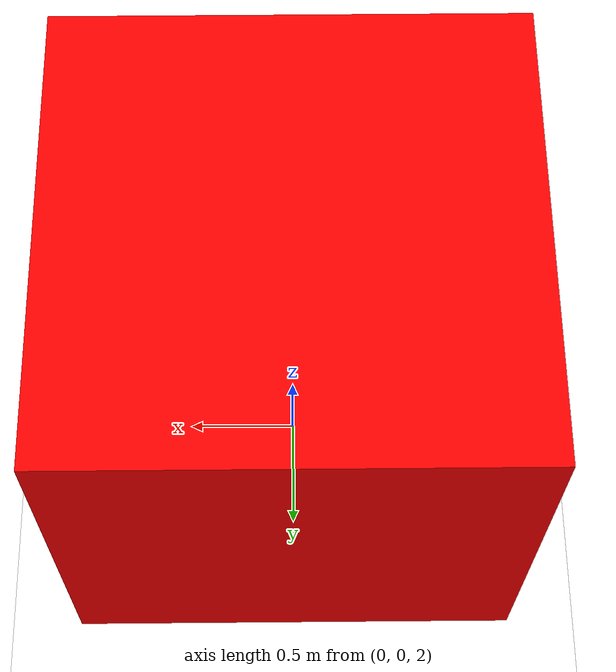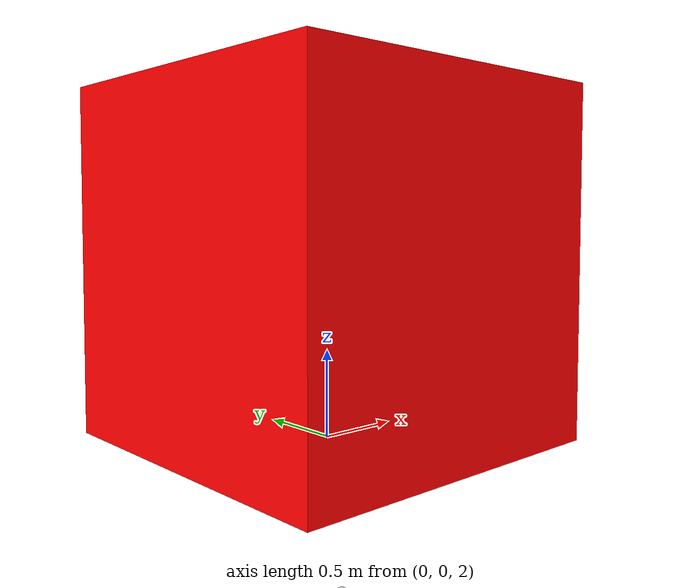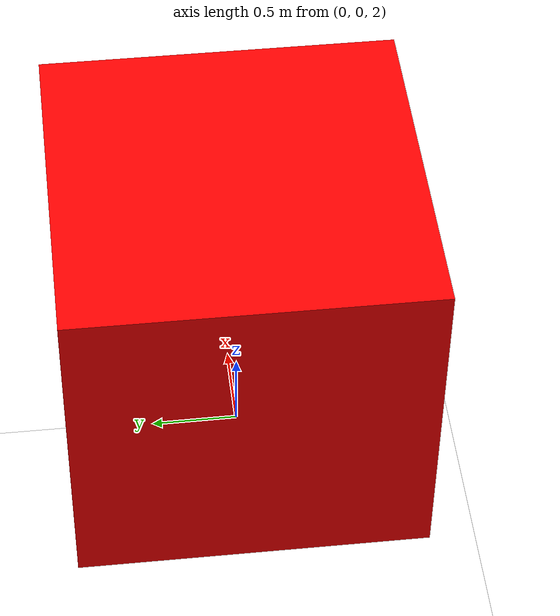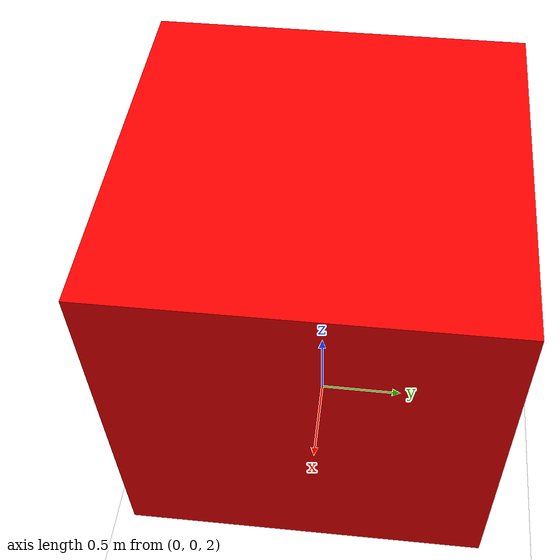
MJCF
<mujoco>
	<worldbody>
		<light diffuse=".5 .5 .5" pos="0 0 5" directional="true" dir="0 0 -1" />
		<geom name="floor" type="plane" size="10 10 10" pos="0 0 0" rgba="1 1 1 1" />
		<body>
            <inertial mass="1" pos="0 0 3" diaginertia="1e-3 1e-3 1e-3"/>
            <joint name="slider" pos="0 0 3" type="slide" axis="1 0 0" range="-5 5" damping="0"/>
			<geom name="cube" type="box" size="1 1 1" pos="0 0 3" rgba="1 0 0 1" />
		</body>
	</worldbody>
    <actuator>
        <position name="pos_x" joint="slider" ctrlrange="-.5 .5" forcerange="10 10" kp="10"/>
    </actuator>
</mujoco>
